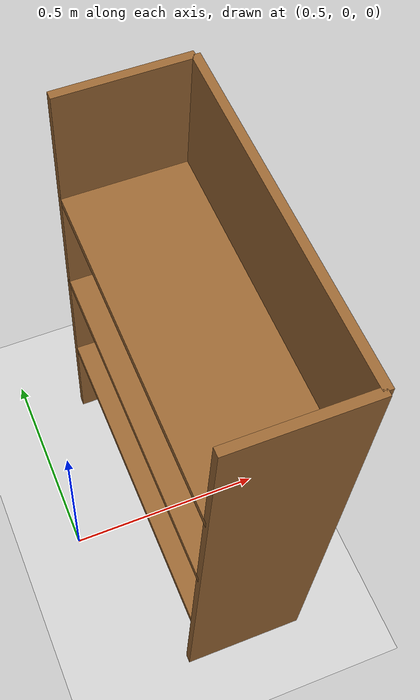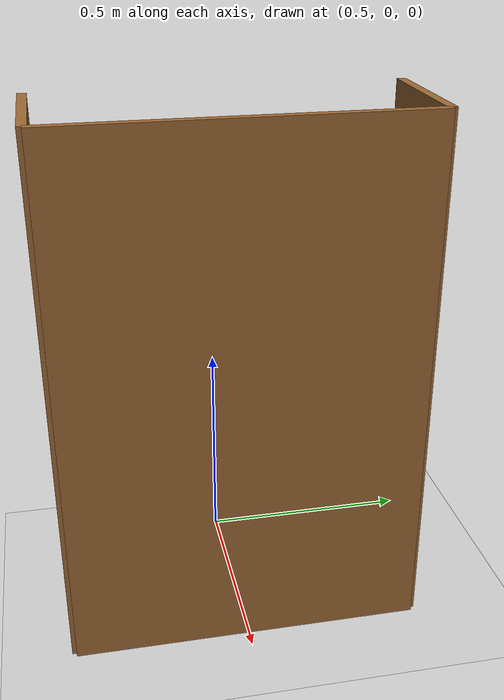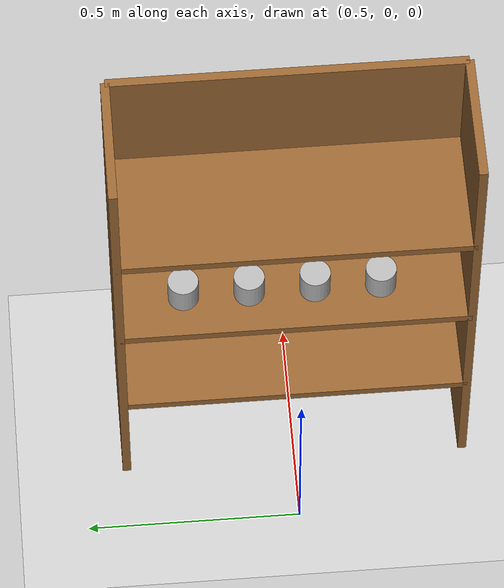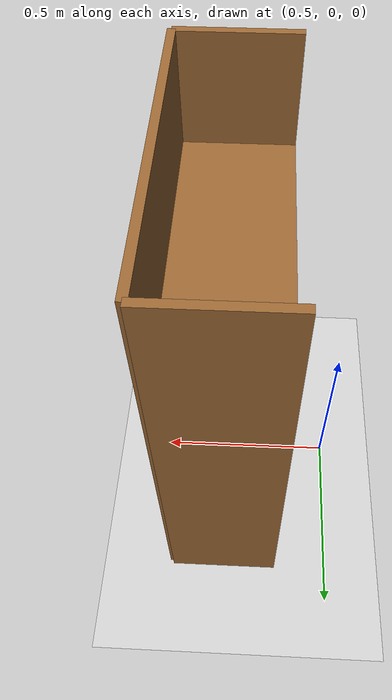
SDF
<sdf version="1.6">
 <world name="shelf_world">
  <light name="sun" type="directional">
   <pose>0 0 10 0 0 0</pose>
   <diffuse>0.9 0.9 0.9 1</diffuse>
   <specular>0.5 0.5 0.5 1</specular>
   <attenuation>
    <range>1000</range>
    <constant>0.9</constant>
    <linear>0.01</linear>
    <quadratic>0.001</quadratic>
   </attenuation>
   <direction>-0.5 0.5 -1</direction>
  </light>
  <light name="fill_light" type="directional">
   <cast_shadows>false</cast_shadows>
   <pose>0 0 10 0 0 0</pose>
   <diffuse>0.4 0.4 0.5 1</diffuse>
   <specular>0.1 0.1 0.1 1</specular>
   <direction>0.5 -0.5 -0.5</direction>
  </light>
  <include><uri>model://ground_plane</uri></include>
  <model name="shelf">
   <static>true</static>
   <pose>0.8 0 0 0 0 0</pose>
   <link name="back_panel">
    <pose>0.15 0 0.6 0 0 0</pose>
    <visual name="visual">
     <geometry><box><size>0.02 0.8 1.2</size></box></geometry>
     <material><ambient>0.6 0.4 0.2 1</ambient><diffuse>0.6 0.4 0.2 1</diffuse></material>
    </visual>
    <collision name="collision"><geometry><box><size>0.02 0.8 1.2</size></box></geometry></collision>
   </link>
   <link name="shelf_bottom">
    <pose>0 0 0.3 0 0 0</pose>
    <visual name="visual">
     <geometry><box><size>0.3 0.8 0.02</size></box></geometry>
     <material><ambient>0.6 0.4 0.2 1</ambient><diffuse>0.6 0.4 0.2 1</diffuse></material>
    </visual>
    <collision name="collision"><geometry><box><size>0.3 0.8 0.02</size></box></geometry></collision>
   </link>
   <link name="shelf_middle">
    <pose>0 0 0.6 0 0 0</pose>
    <visual name="visual">
     <geometry><box><size>0.3 0.8 0.02</size></box></geometry>
     <material><ambient>0.6 0.4 0.2 1</ambient><diffuse>0.6 0.4 0.2 1</diffuse></material>
    </visual>
    <collision name="collision"><geometry><box><size>0.3 0.8 0.02</size></box></geometry></collision>
   </link>
   <link name="shelf_top">
    <pose>0 0 0.9 0 0 0</pose>
    <visual name="visual">
     <geometry><box><size>0.3 0.8 0.02</size></box></geometry>
     <material><ambient>0.6 0.4 0.2 1</ambient><diffuse>0.6 0.4 0.2 1</diffuse></material>
    </visual>
    <collision name="collision"><geometry><box><size>0.3 0.8 0.02</size></box></geometry></collision>
   </link>
   <link name="left_panel">
    <pose>0 -0.4 0.6 0 0 0</pose>
    <visual name="visual">
     <geometry><box><size>0.3 0.02 1.2</size></box></geometry>
     <material><ambient>0.6 0.4 0.2 1</ambient><diffuse>0.6 0.4 0.2 1</diffuse></material>
    </visual>
    <collision name="collision"><geometry><box><size>0.3 0.02 1.2</size></box></geometry></collision>
   </link>
   <link name="right_panel">
    <pose>0 0.4 0.6 0 0 0</pose>
    <visual name="visual">
     <geometry><box><size>0.3 0.02 1.2</size></box></geometry>
     <material><ambient>0.6 0.4 0.2 1</ambient><diffuse>0.6 0.4 0.2 1</diffuse></material>
    </visual>
    <collision name="collision"><geometry><box><size>0.3 0.02 1.2</size></box></geometry></collision>
   </link>
  </model>
  <include><uri>model://beer</uri><name>beer_1</name><pose>0.75 -0.2 0.62 0 0 0</pose></include>
  <include><uri>model://beer</uri><name>beer_2</name><pose>0.75 -0.05 0.62 0 0 0</pose></include>
  <include><uri>model://beer</uri><name>beer_3</name><pose>0.75 0.1 0.62 0 0 0</pose></include>
  <include><uri>model://beer</uri><name>beer_4</name><pose>0.75 0.25 0.62 0 0 0</pose></include>
 </world>
</sdf>

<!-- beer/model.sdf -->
<sdf version='1.4'>
  <model name="beer">
    <link name='link'>
      <pose>0 0 0 0 0 0</pose>
      <inertial>
        <mass>0.390</mass>
        <inertia>
          <ixx>0.00058</ixx>
          <ixy>0</ixy>
          <ixz>0</ixz>
          <iyy>0.00058</iyy>
          <iyz>0</iyz>
          <izz>0.00025</izz>
        </inertia>
      </inertial>
      <collision name='collision'>
        <geometry>
          <cylinder>
            <radius>0.03500</radius>
            <length>0.12000</length>
          </cylinder>
        </geometry>
      </collision>

      <visual name='visual'>
        <geometry>
          <cylinder>
            <radius>0.03500</radius>
            <length>0.12000</length>
          </cylinder>
        </geometry>

        <material>
          <script>
            <uri>model://beer/materials/scripts</uri>
            <uri>model://beer/materials/textures</uri>
            <name>Beer/Diffuse</name>
          </script>
        </material>
      </visual>
    </link>
  </model>
</sdf>
